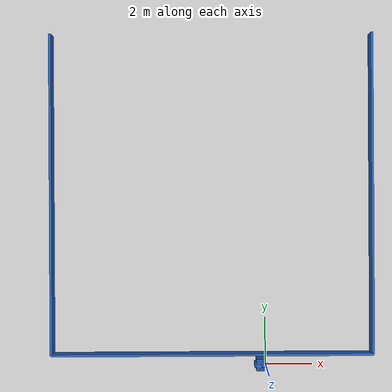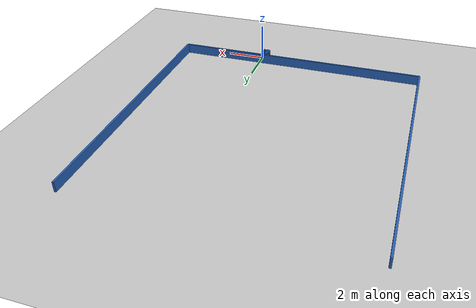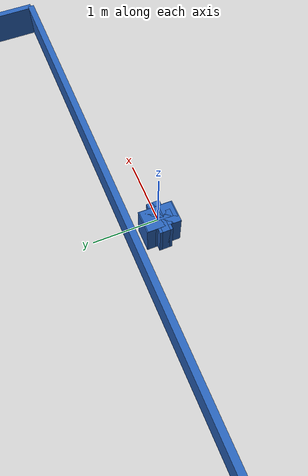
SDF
<?xml version="1.0" ?>
    <sdf version="1.5">
      <world name="default">
        <!-- A global light source -->
        <include>
          <uri>model://sun</uri>
        </include>
        <!-- A ground plane -->
        <include>
          <uri>model://ground_plane</uri>
        </include>

    <model name='libopen_space_final_T2B_139_84'>
      <static>1</static>
      <pose frame=''>-0.225000 0.075000 0.000000 0.000000 0.000000 0.000000</pose>
      <link name='link'>
        <inertial>
          <mass>1</mass>
          <inertia>
            <ixx>0.145833</ixx>
            <ixy>0</ixy>
            <ixz>0</ixz>
            <iyy>0.145833</iyy>
            <iyz>0</iyz>
            <izz>0.125</izz>
          </inertia>
        </inertial>
        <collision name='collision'>
          <geometry>
            <box>
              <size>0.34 0.25 1</size>
            </box>
          </geometry>
          <max_contacts>10</max_contacts>
          <surface>
            <contact>
              <ode/>
            </contact>
            <bounce/>
            <friction>
              <torsional>
                <ode/>
              </torsional>
              <ode/>
            </friction>
          </surface>
        </collision>
        <visual name='visual'>
          <geometry>
            <box>
              <size>0.34 0.25 1</size>
            </box>
          </geometry>
	    <material>
              <ambient>0.152000 0.379000 0.720000 1</ambient>
	      <diffuse>0.152000 0.379000 0.720000 1</diffuse>
          </material>
          <material>
            <script>
              <name>Gazebo/Grey</name>
              <uri>file://media/materials/scripts/gazebo.material</uri>
            </script>
          </material>
        </visual>
        <self_collide>0</self_collide>
        <kinematic>0</kinematic>
        <gravity>1</gravity>
      </link>
      <plugin name='libopen_space_final_T2B_139_84' filename='libopen_space_final_T2B_139_84.so'/>
    </model>

    <model name='libopen_space_final_T2B_125_67'>
      <static>1</static>
      <pose frame=''>-0.225000 0.075000 0.000000 0.000000 0.000000 0.000000</pose>
      <link name='link'>
        <inertial>
          <mass>1</mass>
          <inertia>
            <ixx>0.145833</ixx>
            <ixy>0</ixy>
            <ixz>0</ixz>
            <iyy>0.145833</iyy>
            <iyz>0</iyz>
            <izz>0.125</izz>
          </inertia>
        </inertial>
        <collision name='collision'>
          <geometry>
            <box>
              <size>0.33 0.47 1</size>
            </box>
          </geometry>
          <max_contacts>10</max_contacts>
          <surface>
            <contact>
              <ode/>
            </contact>
            <bounce/>
            <friction>
              <torsional>
                <ode/>
              </torsional>
              <ode/>
            </friction>
          </surface>
        </collision>
        <visual name='visual'>
          <geometry>
            <box>
              <size>0.33 0.47 1</size>
            </box>
          </geometry>
	    <material>
              <ambient>0.152000 0.379000 0.720000 1</ambient>
	      <diffuse>0.152000 0.379000 0.720000 1</diffuse>
          </material>
          <material>
            <script>
              <name>Gazebo/Grey</name>
              <uri>file://media/materials/scripts/gazebo.material</uri>
            </script>
          </material>
        </visual>
        <self_collide>0</self_collide>
        <kinematic>0</kinematic>
        <gravity>1</gravity>
      </link>
      <plugin name='libopen_space_final_T2B_125_67' filename='libopen_space_final_T2B_125_67.so'/>
    </model>

    <model name='libopen_space_final_T2B_111_18'>
      <static>1</static>
      <pose frame=''>-0.225000 0.075000 0.000000 0.000000 0.000000 0.000000</pose>
      <link name='link'>
        <inertial>
          <mass>1</mass>
          <inertia>
            <ixx>0.145833</ixx>
            <ixy>0</ixy>
            <ixz>0</ixz>
            <iyy>0.145833</iyy>
            <iyz>0</iyz>
            <izz>0.125</izz>
          </inertia>
        </inertial>
        <collision name='collision'>
          <geometry>
            <box>
              <size>0.26 0.10 1</size>
            </box>
          </geometry>
          <max_contacts>10</max_contacts>
          <surface>
            <contact>
              <ode/>
            </contact>
            <bounce/>
            <friction>
              <torsional>
                <ode/>
              </torsional>
              <ode/>
            </friction>
          </surface>
        </collision>
        <visual name='visual'>
          <geometry>
            <box>
              <size>0.26 0.10 1</size>
            </box>
          </geometry>
	    <material>
              <ambient>0.152000 0.379000 0.720000 1</ambient>
	      <diffuse>0.152000 0.379000 0.720000 1</diffuse>
          </material>
          <material>
            <script>
              <name>Gazebo/Grey</name>
              <uri>file://media/materials/scripts/gazebo.material</uri>
            </script>
          </material>
        </visual>
        <self_collide>0</self_collide>
        <kinematic>0</kinematic>
        <gravity>1</gravity>
      </link>
      <plugin name='libopen_space_final_T2B_111_18' filename='libopen_space_final_T2B_111_18.so'/>
    </model>

    <model name='libopen_space_final_T2B_118_43'>
      <static>1</static>
      <pose frame=''>-0.225000 0.075000 0.000000 0.000000 0.000000 0.000000</pose>
      <link name='link'>
        <inertial>
          <mass>1</mass>
          <inertia>
            <ixx>0.145833</ixx>
            <ixy>0</ixy>
            <ixz>0</ixz>
            <iyy>0.145833</iyy>
            <iyz>0</iyz>
            <izz>0.125</izz>
          </inertia>
        </inertial>
        <collision name='collision'>
          <geometry>
            <box>
              <size>0.49 0.19 1</size>
            </box>
          </geometry>
          <max_contacts>10</max_contacts>
          <surface>
            <contact>
              <ode/>
            </contact>
            <bounce/>
            <friction>
              <torsional>
                <ode/>
              </torsional>
              <ode/>
            </friction>
          </surface>
        </collision>
        <visual name='visual'>
          <geometry>
            <box>
              <size>0.49 0.19 1</size>
            </box>
          </geometry>
	    <material>
              <ambient>0.152000 0.379000 0.720000 1</ambient>
	      <diffuse>0.152000 0.379000 0.720000 1</diffuse>
          </material>
          <material>
            <script>
              <name>Gazebo/Grey</name>
              <uri>file://media/materials/scripts/gazebo.material</uri>
            </script>
          </material>
        </visual>
        <self_collide>0</self_collide>
        <kinematic>0</kinematic>
        <gravity>1</gravity>
      </link>
      <plugin name='libopen_space_final_T2B_118_43' filename='libopen_space_final_T2B_118_43.so'/>
    </model>

    <model name='libopen_space_final_T2B_120_45'>
      <static>1</static>
      <pose frame=''>-0.225000 0.075000 0.000000 0.000000 0.000000 0.000000</pose>
      <link name='link'>
        <inertial>
          <mass>1</mass>
          <inertia>
            <ixx>0.145833</ixx>
            <ixy>0</ixy>
            <ixz>0</ixz>
            <iyy>0.145833</iyy>
            <iyz>0</iyz>
            <izz>0.125</izz>
          </inertia>
        </inertial>
        <collision name='collision'>
          <geometry>
            <box>
              <size>0.12 0.35 1</size>
            </box>
          </geometry>
          <max_contacts>10</max_contacts>
          <surface>
            <contact>
              <ode/>
            </contact>
            <bounce/>
            <friction>
              <torsional>
                <ode/>
              </torsional>
              <ode/>
            </friction>
          </surface>
        </collision>
        <visual name='visual'>
          <geometry>
            <box>
              <size>0.12 0.35 1</size>
            </box>
          </geometry>
	    <material>
              <ambient>0.152000 0.379000 0.720000 1</ambient>
	      <diffuse>0.152000 0.379000 0.720000 1</diffuse>
          </material>
          <material>
            <script>
              <name>Gazebo/Grey</name>
              <uri>file://media/materials/scripts/gazebo.material</uri>
            </script>
          </material>
        </visual>
        <self_collide>0</self_collide>
        <kinematic>0</kinematic>
        <gravity>1</gravity>
      </link>
      <plugin name='libopen_space_final_T2B_120_45' filename='libopen_space_final_T2B_120_45.so'/>
    </model>

    <model name='libopen_space_final_T2B_125_86'>
      <static>1</static>
      <pose frame=''>-0.225000 0.075000 0.000000 0.000000 0.000000 0.000000</pose>
      <link name='link'>
        <inertial>
          <mass>1</mass>
          <inertia>
            <ixx>0.145833</ixx>
            <ixy>0</ixy>
            <ixz>0</ixz>
            <iyy>0.145833</iyy>
            <iyz>0</iyz>
            <izz>0.125</izz>
          </inertia>
        </inertial>
        <collision name='collision'>
          <geometry>
            <box>
              <size>0.11 0.30 1</size>
            </box>
          </geometry>
          <max_contacts>10</max_contacts>
          <surface>
            <contact>
              <ode/>
            </contact>
            <bounce/>
            <friction>
              <torsional>
                <ode/>
              </torsional>
              <ode/>
            </friction>
          </surface>
        </collision>
        <visual name='visual'>
          <geometry>
            <box>
              <size>0.11 0.30 1</size>
            </box>
          </geometry>
	    <material>
              <ambient>0.152000 0.379000 0.720000 1</ambient>
	      <diffuse>0.152000 0.379000 0.720000 1</diffuse>
          </material>
          <material>
            <script>
              <name>Gazebo/Grey</name>
              <uri>file://media/materials/scripts/gazebo.material</uri>
            </script>
          </material>
        </visual>
        <self_collide>0</self_collide>
        <kinematic>0</kinematic>
        <gravity>1</gravity>
      </link>
      <plugin name='libopen_space_final_T2B_125_86' filename='libopen_space_final_T2B_125_86.so'/>
    </model>

    <model name='libopen_space_final_T2B_127_53'>
      <static>1</static>
      <pose frame=''>-0.225000 0.075000 0.000000 0.000000 0.000000 0.000000</pose>
      <link name='link'>
        <inertial>
          <mass>1</mass>
          <inertia>
            <ixx>0.145833</ixx>
            <ixy>0</ixy>
            <ixz>0</ixz>
            <iyy>0.145833</iyy>
            <iyz>0</iyz>
            <izz>0.125</izz>
          </inertia>
        </inertial>
        <collision name='collision'>
          <geometry>
            <box>
              <size>0.23 0.16 1</size>
            </box>
          </geometry>
          <max_contacts>10</max_contacts>
          <surface>
            <contact>
              <ode/>
            </contact>
            <bounce/>
            <friction>
              <torsional>
                <ode/>
              </torsional>
              <ode/>
            </friction>
          </surface>
        </collision>
        <visual name='visual'>
          <geometry>
            <box>
              <size>0.23 0.16 1</size>
            </box>
          </geometry>
	    <material>
              <ambient>0.152000 0.379000 0.720000 1</ambient>
	      <diffuse>0.152000 0.379000 0.720000 1</diffuse>
          </material>
          <material>
            <script>
              <name>Gazebo/Grey</name>
              <uri>file://media/materials/scripts/gazebo.material</uri>
            </script>
          </material>
        </visual>
        <self_collide>0</self_collide>
        <kinematic>0</kinematic>
        <gravity>1</gravity>
      </link>
      <plugin name='libopen_space_final_T2B_127_53' filename='libopen_space_final_T2B_127_53.so'/>
    </model>

    <model name='libopen_space_final_T2B_57_10'>
      <static>1</static>
      <pose frame=''>-0.225000 0.075000 0.000000 0.000000 0.000000 0.000000</pose>
      <link name='link'>
        <inertial>
          <mass>1</mass>
          <inertia>
            <ixx>0.145833</ixx>
            <ixy>0</ixy>
            <ixz>0</ixz>
            <iyy>0.145833</iyy>
            <iyz>0</iyz>
            <izz>0.125</izz>
          </inertia>
        </inertial>
        <collision name='collision'>
          <geometry>
            <box>
              <size>0.34 0.50 1</size>
            </box>
          </geometry>
          <max_contacts>10</max_contacts>
          <surface>
            <contact>
              <ode/>
            </contact>
            <bounce/>
            <friction>
              <torsional>
                <ode/>
              </torsional>
              <ode/>
            </friction>
          </surface>
        </collision>
        <visual name='visual'>
          <geometry>
            <box>
              <size>0.34 0.50 1</size>
            </box>
          </geometry>
	    <material>
              <ambient>0.152000 0.379000 0.720000 1</ambient>
	      <diffuse>0.152000 0.379000 0.720000 1</diffuse>
          </material>
          <material>
            <script>
              <name>Gazebo/Grey</name>
              <uri>file://media/materials/scripts/gazebo.material</uri>
            </script>
          </material>
        </visual>
        <self_collide>0</self_collide>
        <kinematic>0</kinematic>
        <gravity>1</gravity>
      </link>
      <plugin name='libopen_space_final_T2B_57_10' filename='libopen_space_final_T2B_57_10.so'/>
    </model>

    <model name='libopen_space_final_T2B_112_28'>
      <static>1</static>
      <pose frame=''>-0.225000 0.075000 0.000000 0.000000 0.000000 0.000000</pose>
      <link name='link'>
        <inertial>
          <mass>1</mass>
          <inertia>
            <ixx>0.145833</ixx>
            <ixy>0</ixy>
            <ixz>0</ixz>
            <iyy>0.145833</iyy>
            <iyz>0</iyz>
            <izz>0.125</izz>
          </inertia>
        </inertial>
        <collision name='collision'>
          <geometry>
            <box>
              <size>0.49 0.11 1</size>
            </box>
          </geometry>
          <max_contacts>10</max_contacts>
          <surface>
            <contact>
              <ode/>
            </contact>
            <bounce/>
            <friction>
              <torsional>
                <ode/>
              </torsional>
              <ode/>
            </friction>
          </surface>
        </collision>
        <visual name='visual'>
          <geometry>
            <box>
              <size>0.49 0.11 1</size>
            </box>
          </geometry>
	    <material>
              <ambient>0.152000 0.379000 0.720000 1</ambient>
	      <diffuse>0.152000 0.379000 0.720000 1</diffuse>
          </material>
          <material>
            <script>
              <name>Gazebo/Grey</name>
              <uri>file://media/materials/scripts/gazebo.material</uri>
            </script>
          </material>
        </visual>
        <self_collide>0</self_collide>
        <kinematic>0</kinematic>
        <gravity>1</gravity>
      </link>
      <plugin name='libopen_space_final_T2B_112_28' filename='libopen_space_final_T2B_112_28.so'/>
    </model>

    <model name='libopen_space_final_T2B_52_49'>
      <static>1</static>
      <pose frame=''>-0.225000 0.075000 0.000000 0.000000 0.000000 0.000000</pose>
      <link name='link'>
        <inertial>
          <mass>1</mass>
          <inertia>
            <ixx>0.145833</ixx>
            <ixy>0</ixy>
            <ixz>0</ixz>
            <iyy>0.145833</iyy>
            <iyz>0</iyz>
            <izz>0.125</izz>
          </inertia>
        </inertial>
        <collision name='collision'>
          <geometry>
            <box>
              <size>0.31 0.11 1</size>
            </box>
          </geometry>
          <max_contacts>10</max_contacts>
          <surface>
            <contact>
              <ode/>
            </contact>
            <bounce/>
            <friction>
              <torsional>
                <ode/>
              </torsional>
              <ode/>
            </friction>
          </surface>
        </collision>
        <visual name='visual'>
          <geometry>
            <box>
              <size>0.31 0.11 1</size>
            </box>
          </geometry>
	    <material>
              <ambient>0.152000 0.379000 0.720000 1</ambient>
	      <diffuse>0.152000 0.379000 0.720000 1</diffuse>
          </material>
          <material>
            <script>
              <name>Gazebo/Grey</name>
              <uri>file://media/materials/scripts/gazebo.material</uri>
            </script>
          </material>
        </visual>
        <self_collide>0</self_collide>
        <kinematic>0</kinematic>
        <gravity>1</gravity>
      </link>
      <plugin name='libopen_space_final_T2B_52_49' filename='libopen_space_final_T2B_52_49.so'/>
    </model>

        <model name='bottom_wall'>
          <static>1</static>
          <pose frame=''>-2.25 0.5 0.000000 0.000000 0.000000 1.57079632</pose>
          <link name='link'>
            <inertial>
            <mass>1</mass>
            <inertia>
              <ixx>0.145833</ixx>
              <ixy>0</ixy>
              <ixz>0</ixz>
              <iyy>0.145833</iyy>
              <iyz>0</iyz>
              <izz>0.125</izz>
            </inertia>
            </inertial>
            <collision name='collision'>
            <geometry>
              <box>
              <size>0.1 13.5 1</size>
              </box>
            </geometry>
            <max_contacts>10</max_contacts>
            <surface>
              <contact>
              <ode/>
              </contact>
              <bounce/>
              <friction>
              <torsional>
                <ode/>
              </torsional>
              <ode/>
              </friction>
            </surface>
            </collision>
            <visual name='visual'>
            <geometry>
              <box>
              <size>0.1 13.5 1</size>
              </box>
            </geometry>
            <material>
              <ambient>0.152000 0.379000 0.720000 1</ambient>
            <diffuse>0.152000 0.379000 0.720000 1</diffuse>
            </material>
            <material>
              <script>
              <name>Gazebo/Grey</name>
              <uri>file://media/materials/scripts/gazebo.material</uri>
              </script>
            </material>
            </visual>
            <self_collide>0</self_collide>
            <kinematic>0</kinematic>
            <gravity>1</gravity>
          </link>
        </model>

        <model name='left_wall'>
          <static>1</static>
          <pose frame=''>-9 7.25 0.000000 0.000000 0.000000 0.000000</pose>
          <link name='link'>
            <inertial>
            <mass>1</mass>
            <inertia>
              <ixx>0.145833</ixx>
              <ixy>0</ixy>
              <ixz>0</ixz>
              <iyy>0.145833</iyy>
              <iyz>0</iyz>
              <izz>0.125</izz>
            </inertia>
            </inertial>
            <collision name='collision'>
            <geometry>
              <box>
              <size>0.1 13.5 1</size>
              </box>
            </geometry>
            <max_contacts>10</max_contacts>
            <surface>
              <contact>
              <ode/>
              </contact>
              <bounce/>
              <friction>
              <torsional>
                <ode/>
              </torsional>
              <ode/>
              </friction>
            </surface>
            </collision>
            <visual name='visual'>
            <geometry>
              <box>
              <size>0.1 13.5 1</size>
              </box>
            </geometry>
            <material>
              <ambient>0.152000 0.379000 0.720000 1</ambient>
            <diffuse>0.152000 0.379000 0.720000 1</diffuse>
            </material>
            <material>
              <script>
              <name>Gazebo/Grey</name>
              <uri>file://media/materials/scripts/gazebo.material</uri>
              </script>
            </material>
            </visual>
            <self_collide>0</self_collide>
            <kinematic>0</kinematic>
            <gravity>1</gravity>
          </link>
        </model>

        <model name='right_wall'>
          <static>1</static>
          <pose frame=''>4.5 7.25 0.000000 0.000000 0.000000 0.000000</pose>
          <link name='link'>
            <inertial>
            <mass>1</mass>
            <inertia>
              <ixx>0.145833</ixx>
              <ixy>0</ixy>
              <ixz>0</ixz>
              <iyy>0.145833</iyy>
              <iyz>0</iyz>
              <izz>0.125</izz>
            </inertia>
            </inertial>
            <collision name='collision'>
            <geometry>
              <box>
              <size>0.1 13.5 1</size>
              </box>
            </geometry>
            <max_contacts>10</max_contacts>
            <surface>
              <contact>
              <ode/>
              </contact>
              <bounce/>
              <friction>
              <torsional>
                <ode/>
              </torsional>
              <ode/>
              </friction>
            </surface>
            </collision>
            <visual name='visual'>
            <geometry>
              <box>
              <size>0.1 13.5 1</size>
              </box>
            </geometry>
            <material>
              <ambient>0.152000 0.379000 0.720000 1</ambient>
            <diffuse>0.152000 0.379000 0.720000 1</diffuse>
            </material>
            <material>
              <script>
              <name>Gazebo/Grey</name>
              <uri>file://media/materials/scripts/gazebo.material</uri>
              </script>
            </material>
            </visual>
            <self_collide>0</self_collide>
            <kinematic>0</kinematic>
            <gravity>1</gravity>
          </link>
        </model>

      </world>
    </sdf>"
